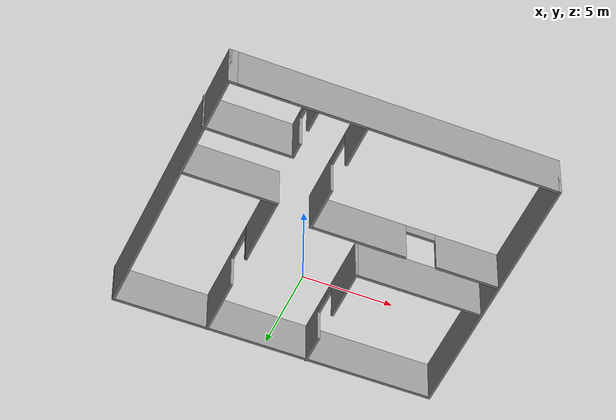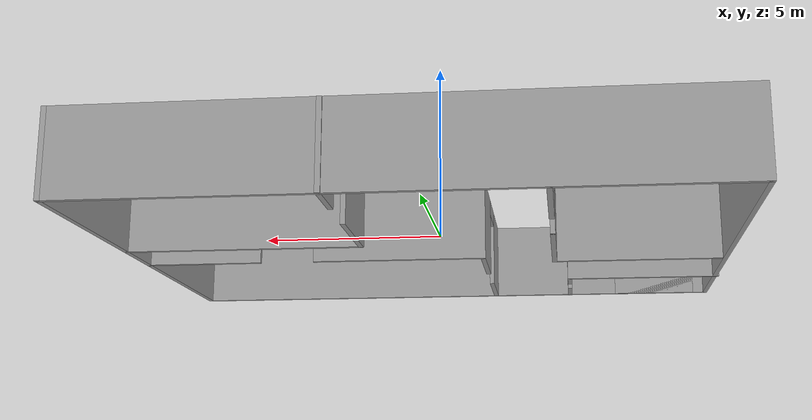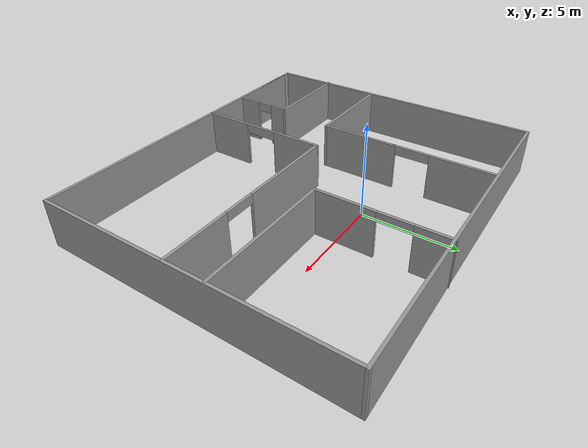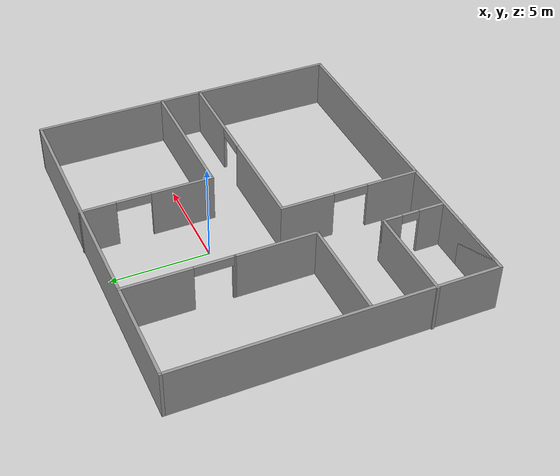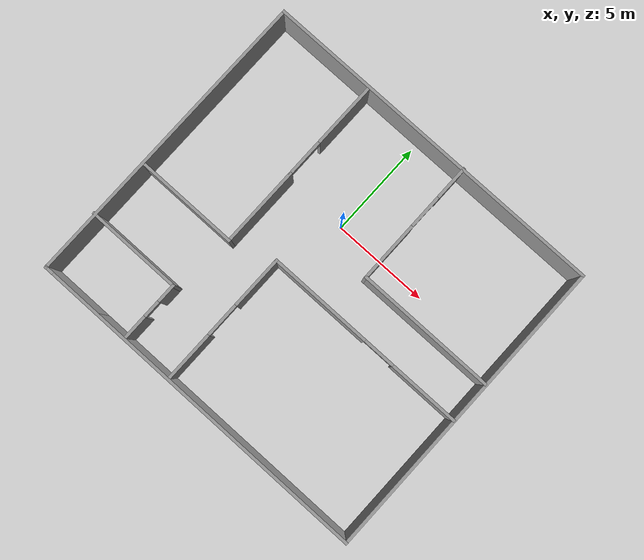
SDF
<?xml version='1.0'?>
<sdf version='1.7'>
  <model name='demo'>
    <pose>0.575781 -2.51803 0 0 -0 0</pose>
    <link name='Wall_17'>
      <collision name='Wall_17_Collision'>
        <geometry>
          <box>
            <size>17.75 0.15 2.5</size>
          </box>
        </geometry>
        <pose>0 0 1.25 0 -0 0</pose>
      </collision>
      <visual name='Wall_17_Visual'>
        <pose>0 0 1.25 0 -0 0</pose>
        <geometry>
          <box>
            <size>17.75 0.15 2.5</size>
          </box>
        </geometry>
        <material>
          <script>
            <uri>file://media/materials/scripts/gazebo.material</uri>
            <name>Gazebo/Grey</name>
          </script>
          <ambient>1 1 1 1</ambient>
        </material>
        <meta>
          <layer>0</layer>
        </meta>
      </visual>
      <pose>0.280874 -7.94512 0 0 -0 0</pose>
    </link>
    <link name='Wall_18'>
      <collision name='Wall_18_Collision'>
        <geometry>
          <box>
            <size>16 0.15 2.5</size>
          </box>
        </geometry>
        <pose>0 0 1.25 0 -0 0</pose>
      </collision>
      <visual name='Wall_18_Visual'>
        <pose>0 0 1.25 0 -0 0</pose>
        <geometry>
          <box>
            <size>16 0.15 2.5</size>
          </box>
        </geometry>
        <material>
          <script>
            <uri>file://media/materials/scripts/gazebo.material</uri>
            <name>Gazebo/Grey</name>
          </script>
          <ambient>1 1 1 1</ambient>
        </material>
        <meta>
          <layer>0</layer>
        </meta>
      </visual>
      <pose>9.08087 -0.020121 0 0 -0 1.5708</pose>
    </link>
    <link name='Wall_19'>
      <collision name='Wall_19_Collision'>
        <geometry>
          <box>
            <size>18.25 0.15 2.5</size>
          </box>
        </geometry>
        <pose>0 0 1.25 0 -0 0</pose>
      </collision>
      <visual name='Wall_19_Visual'>
        <pose>0 0 1.25 0 -0 0</pose>
        <geometry>
          <box>
            <size>18.25 0.15 2.5</size>
          </box>
        </geometry>
        <material>
          <script>
            <uri>file://media/materials/scripts/gazebo.material</uri>
            <name>Gazebo/Grey</name>
          </script>
          <ambient>1 1 1 1</ambient>
        </material>
        <meta>
          <layer>0</layer>
        </meta>
      </visual>
      <pose>0.030874 7.90488 0 0 -0 3.14159</pose>
    </link>
    <link name='Wall_20'>
      <collision name='Wall_20_Collision'>
        <geometry>
          <box>
            <size>16 0.15 2.5</size>
          </box>
        </geometry>
        <pose>0 0 1.25 0 -0 0</pose>
      </collision>
      <visual name='Wall_20_Visual'>
        <pose>0 0 1.25 0 -0 0</pose>
        <geometry>
          <box>
            <size>16 0.15 2.5</size>
          </box>
        </geometry>
        <material>
          <script>
            <uri>file://media/materials/scripts/gazebo.material</uri>
            <name>Gazebo/Grey</name>
          </script>
          <ambient>1 1 1 1</ambient>
        </material>
        <meta>
          <layer>0</layer>
        </meta>
      </visual>
      <pose>-9.01913 -0.020121 0 0 -0 -1.5708</pose>
    </link>
    <link name='Wall_21'>
      <collision name='Wall_21_Collision'>
        <geometry>
          <box>
            <size>3.25 0.15 2.5</size>
          </box>
        </geometry>
        <pose>0 0 1.25 0 -0 0</pose>
      </collision>
      <visual name='Wall_21_Visual'>
        <pose>0 0 1.25 0 -0 0</pose>
        <geometry>
          <box>
            <size>3.25 0.15 2.5</size>
          </box>
        </geometry>
        <material>
          <script>
            <uri>file://media/materials/scripts/gazebo.material</uri>
            <name>Gazebo/Grey</name>
          </script>
          <ambient>1 1 1 1</ambient>
        </material>
        <meta>
          <layer>0</layer>
        </meta>
      </visual>
      <pose>-7.46913 -7.94512 0 0 -0 0</pose>
    </link>
    <link name='Wall_23'>
      <pose>-3.7574 5.21662 0 0 -0 -1.5708</pose>
      <visual name='Wall_23_Visual_0'>
        <pose>-1.00595 0 1.25 0 -0 0</pose>
        <geometry>
          <box>
            <size>3.48809 0.15 2.5</size>
          </box>
        </geometry>
        <material>
          <script>
            <uri>file://media/materials/scripts/gazebo.material</uri>
            <name>Gazebo/Grey</name>
          </script>
          <ambient>1 1 1 1</ambient>
        </material>
        <meta>
          <layer>0</layer>
        </meta>
      </visual>
      <collision name='Wall_23_Collision_0'>
        <geometry>
          <box>
            <size>3.48809 0.15 2.5</size>
          </box>
        </geometry>
        <pose>-1.00595 0 1.25 0 -0 0</pose>
      </collision>
      <visual name='Wall_23_Visual_1'>
        <pose>2.71293 0 1.25 0 -0 0</pose>
        <geometry>
          <box>
            <size>0.074137 0.15 2.5</size>
          </box>
        </geometry>
        <material>
          <script>
            <uri>file://media/materials/scripts/gazebo.material</uri>
            <name>Gazebo/Grey</name>
          </script>
          <ambient>1 1 1 1</ambient>
        </material>
        <meta>
          <layer>0</layer>
        </meta>
      </visual>
      <collision name='Wall_23_Collision_1'>
        <geometry>
          <box>
            <size>0.074137 0.15 2.5</size>
          </box>
        </geometry>
        <pose>2.71293 0 1.25 0 -0 0</pose>
      </collision>
      <visual name='Wall_23_Visual_2'>
        <pose>1.70698 0 2.25 0 -0 0</pose>
        <geometry>
          <box>
            <size>1.93777 0.15 0.5</size>
          </box>
        </geometry>
        <material>
          <script>
            <uri>file://media/materials/scripts/gazebo.material</uri>
            <name>Gazebo/Grey</name>
          </script>
          <ambient>1 1 1 1</ambient>
        </material>
        <meta>
          <layer>0</layer>
        </meta>
      </visual>
      <collision name='Wall_23_Collision_2'>
        <geometry>
          <box>
            <size>1.93777 0.15 0.5</size>
          </box>
        </geometry>
        <pose>1.70698 0 2.25 0 -0 0</pose>
      </collision>
    </link>
    <link name='Wall_24'>
      <collision name='Wall_24_Collision'>
        <geometry>
          <box>
            <size>4.25 0.15 2.5</size>
          </box>
        </geometry>
        <pose>0 0 1.25 0 -0 0</pose>
      </collision>
      <visual name='Wall_24_Visual'>
        <pose>0 0 1.25 0 -0 0</pose>
        <geometry>
          <box>
            <size>4.25 0.15 2.5</size>
          </box>
        </geometry>
        <material>
          <script>
            <uri>file://media/materials/scripts/gazebo.material</uri>
            <name>Gazebo/Grey</name>
          </script>
          <ambient>1 1 1 1</ambient>
        </material>
        <meta>
          <layer>0</layer>
        </meta>
      </visual>
      <pose>-3.7574 0.491619 0 0 -0 -1.5708</pose>
    </link>
    <link name='Wall_25'>
      <collision name='Wall_25_Collision'>
        <geometry>
          <box>
            <size>5.25 0.15 2.5</size>
          </box>
        </geometry>
        <pose>0 0 1.25 0 -0 0</pose>
      </collision>
      <visual name='Wall_25_Visual'>
        <pose>0 0 1.25 0 -0 0</pose>
        <geometry>
          <box>
            <size>5.25 0.15 2.5</size>
          </box>
        </geometry>
        <material>
          <script>
            <uri>file://media/materials/scripts/gazebo.material</uri>
            <name>Gazebo/Grey</name>
          </script>
          <ambient>1 1 1 1</ambient>
        </material>
        <meta>
          <layer>0</layer>
        </meta>
      </visual>
      <pose>-6.3074 -1.55838 0 0 -0 3.14159</pose>
    </link>
    <link name='Wall_27'>
      <pose>1.91386 4.64512 0 0 -0 -1.5708</pose>
      <visual name='Wall_27_Visual_0'>
        <pose>-2.46682 0 1.25 0 -0 0</pose>
        <geometry>
          <box>
            <size>1.81636 0.15 2.5</size>
          </box>
        </geometry>
        <material>
          <script>
            <uri>file://media/materials/scripts/gazebo.material</uri>
            <name>Gazebo/Grey</name>
          </script>
          <ambient>1 1 1 1</ambient>
        </material>
        <meta>
          <layer>0</layer>
        </meta>
      </visual>
      <collision name='Wall_27_Collision_0'>
        <geometry>
          <box>
            <size>1.81636 0.15 2.5</size>
          </box>
        </geometry>
        <pose>-2.46682 0 1.25 0 -0 0</pose>
      </collision>
      <visual name='Wall_27_Visual_1'>
        <pose>1.78033 0 1.25 0 -0 0</pose>
        <geometry>
          <box>
            <size>3.18935 0.15 2.5</size>
          </box>
        </geometry>
        <material>
          <script>
            <uri>file://media/materials/scripts/gazebo.material</uri>
            <name>Gazebo/Grey</name>
          </script>
          <ambient>1 1 1 1</ambient>
        </material>
        <meta>
          <layer>0</layer>
        </meta>
      </visual>
      <collision name='Wall_27_Collision_1'>
        <geometry>
          <box>
            <size>3.18935 0.15 2.5</size>
          </box>
        </geometry>
        <pose>1.78033 0 1.25 0 -0 0</pose>
      </collision>
      <visual name='Wall_27_Visual_2'>
        <pose>-0.686493 0 2.25 0 -0 0</pose>
        <geometry>
          <box>
            <size>1.74429 0.15 0.5</size>
          </box>
        </geometry>
        <material>
          <script>
            <uri>file://media/materials/scripts/gazebo.material</uri>
            <name>Gazebo/Grey</name>
          </script>
          <ambient>1 1 1 1</ambient>
        </material>
        <meta>
          <layer>0</layer>
        </meta>
      </visual>
      <collision name='Wall_27_Collision_2'>
        <geometry>
          <box>
            <size>1.74429 0.15 0.5</size>
          </box>
        </geometry>
        <pose>-0.686493 0 2.25 0 -0 0</pose>
      </collision>
    </link>
    <link name='Wall_28'>
      <collision name='Wall_28_Collision'>
        <geometry>
          <box>
            <size>7.25 0.15 2.5</size>
          </box>
        </geometry>
        <pose>0 0 1.25 0 -0 0</pose>
      </collision>
      <visual name='Wall_28_Visual'>
        <pose>0 0 1.25 0 -0 0</pose>
        <geometry>
          <box>
            <size>7.25 0.15 2.5</size>
          </box>
        </geometry>
        <material>
          <script>
            <uri>file://media/materials/scripts/gazebo.material</uri>
            <name>Gazebo/Grey</name>
          </script>
          <ambient>1 1 1 1</ambient>
        </material>
        <meta>
          <layer>0</layer>
        </meta>
      </visual>
      <pose>5.46386 1.34512 0 0 -0 0</pose>
    </link>
    <link name='Wall_32'>
      <pose>-1.5638 -4.34162 0 0 -0 1.5708</pose>
      <visual name='Wall_32_Visual_0'>
        <pose>-2.28559 0 1.25 0 -0 0</pose>
        <geometry>
          <box>
            <size>2.67882 0.15 2.5</size>
          </box>
        </geometry>
        <material>
          <script>
            <uri>file://media/materials/scripts/gazebo.material</uri>
            <name>Gazebo/Grey</name>
          </script>
          <ambient>1 1 1 1</ambient>
        </material>
        <meta>
          <layer>0</layer>
        </meta>
      </visual>
      <collision name='Wall_32_Collision_0'>
        <geometry>
          <box>
            <size>2.67882 0.15 2.5</size>
          </box>
        </geometry>
        <pose>-2.28559 0 1.25 0 -0 0</pose>
      </collision>
      <visual name='Wall_32_Visual_1'>
        <pose>2.23139 0 1.25 0 -0 0</pose>
        <geometry>
          <box>
            <size>2.78722 0.15 2.5</size>
          </box>
        </geometry>
        <material>
          <script>
            <uri>file://media/materials/scripts/gazebo.material</uri>
            <name>Gazebo/Grey</name>
          </script>
          <ambient>1 1 1 1</ambient>
        </material>
        <meta>
          <layer>0</layer>
        </meta>
      </visual>
      <collision name='Wall_32_Collision_1'>
        <geometry>
          <box>
            <size>2.78722 0.15 2.5</size>
          </box>
        </geometry>
        <pose>2.23139 0 1.25 0 -0 0</pose>
      </collision>
      <visual name='Wall_32_Visual_2'>
        <pose>-0.054198 0 2.25 0 -0 0</pose>
        <geometry>
          <box>
            <size>1.78395 0.15 0.5</size>
          </box>
        </geometry>
        <material>
          <script>
            <uri>file://media/materials/scripts/gazebo.material</uri>
            <name>Gazebo/Grey</name>
          </script>
          <ambient>1 1 1 1</ambient>
        </material>
        <meta>
          <layer>0</layer>
        </meta>
      </visual>
      <collision name='Wall_32_Collision_2'>
        <geometry>
          <box>
            <size>1.78395 0.15 0.5</size>
          </box>
        </geometry>
        <pose>-0.054198 0 2.25 0 -0 0</pose>
      </collision>
    </link>
    <link name='Wall_33'>
      <pose>3.7362 -0.791619 0 0 -0 0</pose>
      <visual name='Wall_33_Visual_0'>
        <pose>-2.66687 0 1.25 0 -0 0</pose>
        <geometry>
          <box>
            <size>5.41627 0.15 2.5</size>
          </box>
        </geometry>
        <material>
          <script>
            <uri>file://media/materials/scripts/gazebo.material</uri>
            <name>Gazebo/Grey</name>
          </script>
          <ambient>1 1 1 1</ambient>
        </material>
        <meta>
          <layer>0</layer>
        </meta>
      </visual>
      <collision name='Wall_33_Collision_0'>
        <geometry>
          <box>
            <size>5.41627 0.15 2.5</size>
          </box>
        </geometry>
        <pose>-2.66687 0 1.25 0 -0 0</pose>
      </collision>
      <visual name='Wall_33_Visual_1'>
        <pose>3.5451 0 1.25 0 -0 0</pose>
        <geometry>
          <box>
            <size>3.6598 0.15 2.5</size>
          </box>
        </geometry>
        <material>
          <script>
            <uri>file://media/materials/scripts/gazebo.material</uri>
            <name>Gazebo/Grey</name>
          </script>
          <ambient>1 1 1 1</ambient>
        </material>
        <meta>
          <layer>0</layer>
        </meta>
      </visual>
      <collision name='Wall_33_Collision_1'>
        <geometry>
          <box>
            <size>3.6598 0.15 2.5</size>
          </box>
        </geometry>
        <pose>3.5451 0 1.25 0 -0 0</pose>
      </collision>
      <visual name='Wall_33_Visual_2'>
        <pose>0.878232 0 2.25 0 -0 0</pose>
        <geometry>
          <box>
            <size>1.67393 0.15 0.5</size>
          </box>
        </geometry>
        <material>
          <script>
            <uri>file://media/materials/scripts/gazebo.material</uri>
            <name>Gazebo/Grey</name>
          </script>
          <ambient>1 1 1 1</ambient>
        </material>
        <meta>
          <layer>0</layer>
        </meta>
      </visual>
      <collision name='Wall_33_Collision_2'>
        <geometry>
          <box>
            <size>1.67393 0.15 0.5</size>
          </box>
        </geometry>
        <pose>0.878232 0 2.25 0 -0 0</pose>
      </collision>
    </link>
    <link name='Wall_35'>
      <collision name='Wall_35_Collision'>
        <geometry>
          <box>
            <size>5 0.15 2.5</size>
          </box>
        </geometry>
        <pose>0 0 1.25 0 -0 0</pose>
      </collision>
      <visual name='Wall_35_Visual'>
        <pose>0 0 1.25 0 -0 0</pose>
        <geometry>
          <box>
            <size>5 0.15 2.5</size>
          </box>
        </geometry>
        <material>
          <script>
            <uri>file://media/materials/scripts/gazebo.material</uri>
            <name>Gazebo/Grey</name>
          </script>
          <ambient>1 1 1 1</ambient>
        </material>
        <meta>
          <layer>0</layer>
        </meta>
      </visual>
      <pose>-6.65587 -4.7254 0 0 -0 0</pose>
    </link>
    <link name='Wall_36'>
      <pose>-4.23088 -6.2754 0 0 -0 -1.5708</pose>
      <visual name='Wall_36_Visual_0'>
        <pose>-1.10241 0 1.25 0 -0 0</pose>
        <geometry>
          <box>
            <size>1.04518 0.15 2.5</size>
          </box>
        </geometry>
        <material>
          <script>
            <uri>file://media/materials/scripts/gazebo.material</uri>
            <name>Gazebo/Grey</name>
          </script>
          <ambient>1 1 1 1</ambient>
        </material>
        <meta>
          <layer>0</layer>
        </meta>
      </visual>
      <collision name='Wall_36_Collision_0'>
        <geometry>
          <box>
            <size>1.04518 0.15 2.5</size>
          </box>
        </geometry>
        <pose>-1.10241 0 1.25 0 -0 0</pose>
      </collision>
      <visual name='Wall_36_Visual_1'>
        <pose>0.97259 0 1.25 0 -0 0</pose>
        <geometry>
          <box>
            <size>1.30482 0.15 2.5</size>
          </box>
        </geometry>
        <material>
          <script>
            <uri>file://media/materials/scripts/gazebo.material</uri>
            <name>Gazebo/Grey</name>
          </script>
          <ambient>1 1 1 1</ambient>
        </material>
        <meta>
          <layer>0</layer>
        </meta>
      </visual>
      <collision name='Wall_36_Collision_1'>
        <geometry>
          <box>
            <size>1.30482 0.15 2.5</size>
          </box>
        </geometry>
        <pose>0.97259 0 1.25 0 -0 0</pose>
      </collision>
      <visual name='Wall_36_Visual_2'>
        <pose>-0.129821 0 2.25 0 -0 0</pose>
        <geometry>
          <box>
            <size>0.9 0.15 0.5</size>
          </box>
        </geometry>
        <material>
          <script>
            <uri>file://media/materials/scripts/gazebo.material</uri>
            <name>Gazebo/Grey</name>
          </script>
          <ambient>1 1 1 1</ambient>
        </material>
        <meta>
          <layer>0</layer>
        </meta>
      </visual>
      <collision name='Wall_36_Collision_2'>
        <geometry>
          <box>
            <size>0.9 0.15 0.5</size>
          </box>
        </geometry>
        <pose>-0.129821 0 2.25 0 -0 0</pose>
      </collision>
    </link>
    <static>1</static>
  </model>
</sdf>
